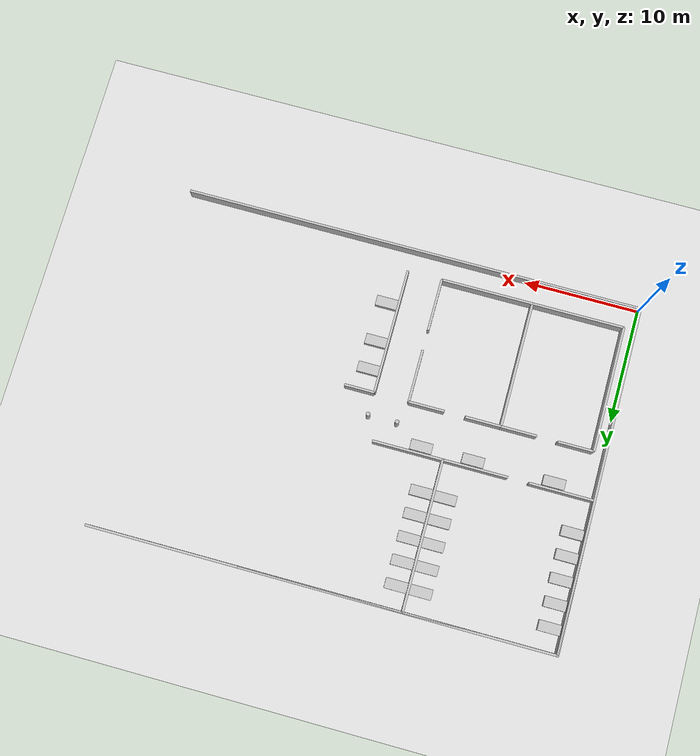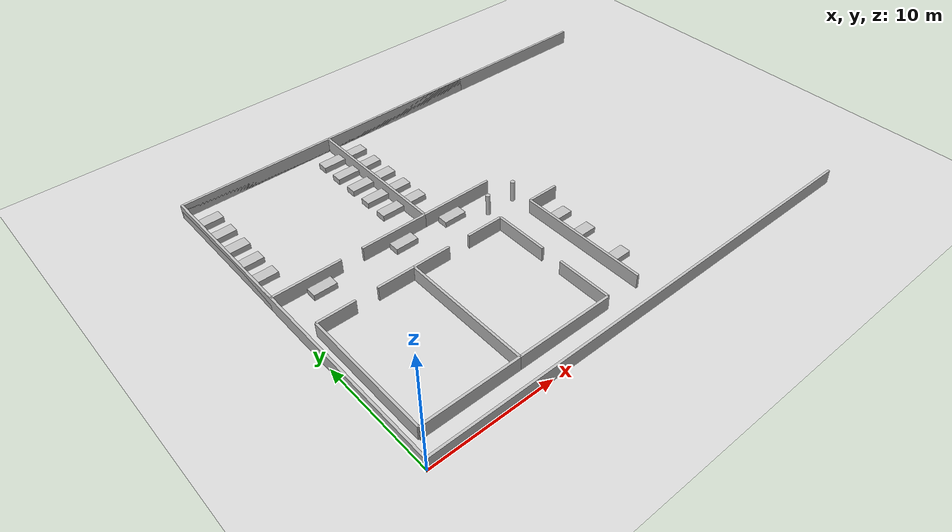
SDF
<sdf version="1.9">
 <world name="hospital">
  <model name="ground_plane">
   <static>true</static>
   <link name="link">
    <collision name="collision">
     <geometry><plane><normal>0 0 1</normal><size>200 200</size></plane></geometry>
    </collision>
    <visual name="visual">
     <pose>0 0 -0.03 0 0 0</pose>
     <cast_shadows>false</cast_shadows>
     <geometry><plane><normal>0 0 1</normal><size>200 200</size></plane></geometry>
     <material>
      <ambient>0.425 0.425 0.425 1.0</ambient>
      <diffuse>0.850 0.850 0.850 1.0</diffuse>
      <specular>0.14 0.14 0.14 1</specular>
      <emissive>0.000 0.000 0.000 1</emissive>
     </material>
    </visual>
   </link>
  </model>
  <model name="wall_0">
   <static>true</static>
   <pose>20.0 0.0 0.6 0 0 0</pose>
   <link name="link">
    <collision name="c"><geometry><box><size>40.2 0.2 1.2</size></box></geometry></collision>
    <visual name="v">
     <geometry><box><size>40.2 0.2 1.2</size></box></geometry>
     <material>
      <ambient>0.375 0.375 0.375 1.0</ambient>
      <diffuse>0.750 0.750 0.750 1.0</diffuse>
      <specular>0.14 0.14 0.14 1</specular>
      <emissive>0.000 0.000 0.000 1</emissive>
     </material>
    </visual>
   </link>
  </model>
  <model name="wall_1">
   <static>true</static>
   <pose>20.0 30.0 0.6 0 0 0</pose>
   <link name="link">
    <collision name="c"><geometry><box><size>40.2 0.20000000000000284 1.2</size></box></geometry></collision>
    <visual name="v">
     <geometry><box><size>40.2 0.20000000000000284 1.2</size></box></geometry>
     <material>
      <ambient>0.375 0.375 0.375 1.0</ambient>
      <diffuse>0.750 0.750 0.750 1.0</diffuse>
      <specular>0.14 0.14 0.14 1</specular>
      <emissive>0.000 0.000 0.000 1</emissive>
     </material>
    </visual>
   </link>
  </model>
  <model name="wall_2">
   <static>true</static>
   <pose>0.0 15.0 0.6 0 0 0</pose>
   <link name="link">
    <collision name="c"><geometry><box><size>0.2 30.200000000000003 1.2</size></box></geometry></collision>
    <visual name="v">
     <geometry><box><size>0.2 30.200000000000003 1.2</size></box></geometry>
     <material>
      <ambient>0.375 0.375 0.375 1.0</ambient>
      <diffuse>0.750 0.750 0.750 1.0</diffuse>
      <specular>0.14 0.14 0.14 1</specular>
      <emissive>0.000 0.000 0.000 1</emissive>
     </material>
    </visual>
   </link>
  </model>
  <model name="wall_4">
   <static>true</static>
   <pose>2.8 17.0 0.6 0 0 0</pose>
   <link name="link">
    <collision name="c"><geometry><box><size>5.6 0.20000000000000284 1.2</size></box></geometry></collision>
    <visual name="v">
     <geometry><box><size>5.6 0.20000000000000284 1.2</size></box></geometry>
     <material>
      <ambient>0.375 0.375 0.375 1.0</ambient>
      <diffuse>0.750 0.750 0.750 1.0</diffuse>
      <specular>0.14 0.14 0.14 1</specular>
      <emissive>0.000 0.000 0.000 1</emissive>
     </material>
    </visual>
   </link>
  </model>
  <model name="wall_5">
   <static>true</static>
   <pose>10.2 17.0 0.6 0 0 0</pose>
   <link name="link">
    <collision name="c"><geometry><box><size>5.6 0.20000000000000284 1.2</size></box></geometry></collision>
    <visual name="v">
     <geometry><box><size>5.6 0.20000000000000284 1.2</size></box></geometry>
     <material>
      <ambient>0.375 0.375 0.375 1.0</ambient>
      <diffuse>0.750 0.750 0.750 1.0</diffuse>
      <specular>0.14 0.14 0.14 1</specular>
      <emissive>0.000 0.000 0.000 1</emissive>
     </material>
    </visual>
   </link>
  </model>
  <model name="wall_6">
   <static>true</static>
   <pose>6.5 30.0 0.6 0 0 0</pose>
   <link name="link">
    <collision name="c"><geometry><box><size>13.0 0.20000000000000284 1.2</size></box></geometry></collision>
    <visual name="v">
     <geometry><box><size>13.0 0.20000000000000284 1.2</size></box></geometry>
     <material>
      <ambient>0.375 0.375 0.375 1.0</ambient>
      <diffuse>0.750 0.750 0.750 1.0</diffuse>
      <specular>0.14 0.14 0.14 1</specular>
      <emissive>0.000 0.000 0.000 1</emissive>
     </material>
    </visual>
   </link>
  </model>
  <model name="wall_7">
   <static>true</static>
   <pose>0.0 23.5 0.6 0 0 0</pose>
   <link name="link">
    <collision name="c"><geometry><box><size>0.2 13.0 1.2</size></box></geometry></collision>
    <visual name="v">
     <geometry><box><size>0.2 13.0 1.2</size></box></geometry>
     <material>
      <ambient>0.375 0.375 0.375 1.0</ambient>
      <diffuse>0.750 0.750 0.750 1.0</diffuse>
      <specular>0.14 0.14 0.14 1</specular>
      <emissive>0.000 0.000 0.000 1</emissive>
     </material>
    </visual>
   </link>
  </model>
  <model name="wall_8">
   <static>true</static>
   <pose>13.0 23.5 0.6 0 0 0</pose>
   <link name="link">
    <collision name="c"><geometry><box><size>0.1999999999999993 13.0 1.2</size></box></geometry></collision>
    <visual name="v">
     <geometry><box><size>0.1999999999999993 13.0 1.2</size></box></geometry>
     <material>
      <ambient>0.375 0.375 0.375 1.0</ambient>
      <diffuse>0.750 0.750 0.750 1.0</diffuse>
      <specular>0.14 0.14 0.14 1</specular>
      <emissive>0.000 0.000 0.000 1</emissive>
     </material>
    </visual>
   </link>
  </model>
  <model name="wall_9">
   <static>true</static>
   <pose>16.05 17.0 0.6 0 0 0</pose>
   <link name="link">
    <collision name="c">
     <geometry><box><size>6.100000000000001 0.20000000000000284 1.2</size></box></geometry>
    </collision>
    <visual name="v">
     <geometry><box><size>6.100000000000001 0.20000000000000284 1.2</size></box></geometry>
     <material>
      <ambient>0.375 0.375 0.375 1.0</ambient>
      <diffuse>0.750 0.750 0.750 1.0</diffuse>
      <specular>0.14 0.14 0.14 1</specular>
      <emissive>0.000 0.000 0.000 1</emissive>
     </material>
    </visual>
   </link>
  </model>
  <model name="wall_11">
   <static>true</static>
   <pose>20.0 30.0 0.6 0 0 0</pose>
   <link name="link">
    <collision name="c"><geometry><box><size>14.0 0.20000000000000284 1.2</size></box></geometry></collision>
    <visual name="v">
     <geometry><box><size>14.0 0.20000000000000284 1.2</size></box></geometry>
     <material>
      <ambient>0.375 0.375 0.375 1.0</ambient>
      <diffuse>0.750 0.750 0.750 1.0</diffuse>
      <specular>0.14 0.14 0.14 1</specular>
      <emissive>0.000 0.000 0.000 1</emissive>
     </material>
    </visual>
   </link>
  </model>
  <model name="wall_12">
   <static>true</static>
   <pose>13.0 23.5 0.6 0 0 0</pose>
   <link name="link">
    <collision name="c"><geometry><box><size>0.1999999999999993 13.0 1.2</size></box></geometry></collision>
    <visual name="v">
     <geometry><box><size>0.1999999999999993 13.0 1.2</size></box></geometry>
     <material>
      <ambient>0.375 0.375 0.375 1.0</ambient>
      <diffuse>0.750 0.750 0.750 1.0</diffuse>
      <specular>0.14 0.14 0.14 1</specular>
      <emissive>0.000 0.000 0.000 1</emissive>
     </material>
    </visual>
   </link>
  </model>
  <model name="wall_19">
   <static>true</static>
   <pose>5.0 2.0 0.6 0 0 0</pose>
   <link name="link">
    <collision name="c"><geometry><box><size>8.0 0.20000000000000018 1.2</size></box></geometry></collision>
    <visual name="v">
     <geometry><box><size>8.0 0.20000000000000018 1.2</size></box></geometry>
     <material>
      <ambient>0.375 0.375 0.375 1.0</ambient>
      <diffuse>0.750 0.750 0.750 1.0</diffuse>
      <specular>0.14 0.14 0.14 1</specular>
      <emissive>0.000 0.000 0.000 1</emissive>
     </material>
    </visual>
   </link>
  </model>
  <model name="wall_20">
   <static>true</static>
   <pose>2.55 13.0 0.6 0 0 0</pose>
   <link name="link">
    <collision name="c">
     <geometry><box><size>3.0999999999999996 0.1999999999999993 1.2</size></box></geometry>
    </collision>
    <visual name="v">
     <geometry><box><size>3.0999999999999996 0.1999999999999993 1.2</size></box></geometry>
     <material>
      <ambient>0.375 0.375 0.375 1.0</ambient>
      <diffuse>0.750 0.750 0.750 1.0</diffuse>
      <specular>0.14 0.14 0.14 1</specular>
      <emissive>0.000 0.000 0.000 1</emissive>
     </material>
    </visual>
   </link>
  </model>
  <model name="wall_21">
   <static>true</static>
   <pose>7.45 13.0 0.6 0 0 0</pose>
   <link name="link">
    <collision name="c">
     <geometry><box><size>3.0999999999999996 0.1999999999999993 1.2</size></box></geometry>
    </collision>
    <visual name="v">
     <geometry><box><size>3.0999999999999996 0.1999999999999993 1.2</size></box></geometry>
     <material>
      <ambient>0.375 0.375 0.375 1.0</ambient>
      <diffuse>0.750 0.750 0.750 1.0</diffuse>
      <specular>0.14 0.14 0.14 1</specular>
      <emissive>0.000 0.000 0.000 1</emissive>
     </material>
    </visual>
   </link>
  </model>
  <model name="wall_22">
   <static>true</static>
   <pose>1.0 7.5 0.6 0 0 0</pose>
   <link name="link">
    <collision name="c"><geometry><box><size>0.20000000000000007 11.0 1.2</size></box></geometry></collision>
    <visual name="v">
     <geometry><box><size>0.20000000000000007 11.0 1.2</size></box></geometry>
     <material>
      <ambient>0.375 0.375 0.375 1.0</ambient>
      <diffuse>0.750 0.750 0.750 1.0</diffuse>
      <specular>0.14 0.14 0.14 1</specular>
      <emissive>0.000 0.000 0.000 1</emissive>
     </material>
    </visual>
   </link>
  </model>
  <model name="wall_23">
   <static>true</static>
   <pose>9.0 7.5 0.6 0 0 0</pose>
   <link name="link">
    <collision name="c"><geometry><box><size>0.1999999999999993 11.0 1.2</size></box></geometry></collision>
    <visual name="v">
     <geometry><box><size>0.1999999999999993 11.0 1.2</size></box></geometry>
     <material>
      <ambient>0.375 0.375 0.375 1.0</ambient>
      <diffuse>0.750 0.750 0.750 1.0</diffuse>
      <specular>0.14 0.14 0.14 1</specular>
      <emissive>0.000 0.000 0.000 1</emissive>
     </material>
    </visual>
   </link>
  </model>
  <model name="wall_24">
   <static>true</static>
   <pose>13.0 2.0 0.6 0 0 0</pose>
   <link name="link">
    <collision name="c"><geometry><box><size>8.0 0.20000000000000018 1.2</size></box></geometry></collision>
    <visual name="v">
     <geometry><box><size>8.0 0.20000000000000018 1.2</size></box></geometry>
     <material>
      <ambient>0.375 0.375 0.375 1.0</ambient>
      <diffuse>0.750 0.750 0.750 1.0</diffuse>
      <specular>0.14 0.14 0.14 1</specular>
      <emissive>0.000 0.000 0.000 1</emissive>
     </material>
    </visual>
   </link>
  </model>
  <model name="wall_25">
   <static>true</static>
   <pose>10.55 13.0 0.6 0 0 0</pose>
   <link name="link">
    <collision name="c">
     <geometry><box><size>3.0999999999999996 0.1999999999999993 1.2</size></box></geometry>
    </collision>
    <visual name="v">
     <geometry><box><size>3.0999999999999996 0.1999999999999993 1.2</size></box></geometry>
     <material>
      <ambient>0.375 0.375 0.375 1.0</ambient>
      <diffuse>0.750 0.750 0.750 1.0</diffuse>
      <specular>0.14 0.14 0.14 1</specular>
      <emissive>0.000 0.000 0.000 1</emissive>
     </material>
    </visual>
   </link>
  </model>
  <model name="wall_26">
   <static>true</static>
   <pose>15.45 13.0 0.6 0 0 0</pose>
   <link name="link">
    <collision name="c">
     <geometry><box><size>3.0999999999999996 0.1999999999999993 1.2</size></box></geometry>
    </collision>
    <visual name="v">
     <geometry><box><size>3.0999999999999996 0.1999999999999993 1.2</size></box></geometry>
     <material>
      <ambient>0.375 0.375 0.375 1.0</ambient>
      <diffuse>0.750 0.750 0.750 1.0</diffuse>
      <specular>0.14 0.14 0.14 1</specular>
      <emissive>0.000 0.000 0.000 1</emissive>
     </material>
    </visual>
   </link>
  </model>
  <model name="wall_27">
   <static>true</static>
   <pose>9.0 7.5 0.6 0 0 0</pose>
   <link name="link">
    <collision name="c"><geometry><box><size>0.1999999999999993 11.0 1.2</size></box></geometry></collision>
    <visual name="v">
     <geometry><box><size>0.1999999999999993 11.0 1.2</size></box></geometry>
     <material>
      <ambient>0.375 0.375 0.375 1.0</ambient>
      <diffuse>0.750 0.750 0.750 1.0</diffuse>
      <specular>0.14 0.14 0.14 1</specular>
      <emissive>0.000 0.000 0.000 1</emissive>
     </material>
    </visual>
   </link>
  </model>
  <model name="wall_28">
   <static>true</static>
   <pose>17.0 4.3 0.6 0 0 0</pose>
   <link name="link">
    <collision name="c"><geometry><box><size>0.20000000000000284 4.6 1.2</size></box></geometry></collision>
    <visual name="v">
     <geometry><box><size>0.20000000000000284 4.6 1.2</size></box></geometry>
     <material>
      <ambient>0.375 0.375 0.375 1.0</ambient>
      <diffuse>0.750 0.750 0.750 1.0</diffuse>
      <specular>0.14 0.14 0.14 1</specular>
      <emissive>0.000 0.000 0.000 1</emissive>
     </material>
    </visual>
   </link>
  </model>
  <model name="wall_29">
   <static>true</static>
   <pose>17.0 10.7 0.6 0 0 0</pose>
   <link name="link">
    <collision name="c"><geometry><box><size>0.20000000000000284 4.6 1.2</size></box></geometry></collision>
    <visual name="v">
     <geometry><box><size>0.20000000000000284 4.6 1.2</size></box></geometry>
     <material>
      <ambient>0.375 0.375 0.375 1.0</ambient>
      <diffuse>0.750 0.750 0.750 1.0</diffuse>
      <specular>0.14 0.14 0.14 1</specular>
      <emissive>0.000 0.000 0.000 1</emissive>
     </material>
    </visual>
   </link>
  </model>
  <model name="wall_31">
   <static>true</static>
   <pose>21.3 13.0 0.6 0 0 0</pose>
   <link name="link">
    <collision name="c">
     <geometry><box><size>2.6000000000000014 0.1999999999999993 1.2</size></box></geometry>
    </collision>
    <visual name="v">
     <geometry><box><size>2.6000000000000014 0.1999999999999993 1.2</size></box></geometry>
     <material>
      <ambient>0.375 0.375 0.375 1.0</ambient>
      <diffuse>0.750 0.750 0.750 1.0</diffuse>
      <specular>0.14 0.14 0.14 1</specular>
      <emissive>0.000 0.000 0.000 1</emissive>
     </material>
    </visual>
   </link>
  </model>
  <model name="wall_33">
   <static>true</static>
   <pose>20.0 7.5 0.6 0 0 0</pose>
   <link name="link">
    <collision name="c"><geometry><box><size>0.20000000000000284 11.0 1.2</size></box></geometry></collision>
    <visual name="v">
     <geometry><box><size>0.20000000000000284 11.0 1.2</size></box></geometry>
     <material>
      <ambient>0.375 0.375 0.375 1.0</ambient>
      <diffuse>0.750 0.750 0.750 1.0</diffuse>
      <specular>0.14 0.14 0.14 1</specular>
      <emissive>0.000 0.000 0.000 1</emissive>
     </material>
    </visual>
   </link>
  </model>
  <model name="bed_0">
   <static>true</static>
   <pose>1.05 20.0 0.25 0 0 0</pose>
   <link name="link">
    <collision name="c"><geometry><box><size>1.9 0.8999999999999986 0.5</size></box></geometry></collision>
    <visual name="v">
     <geometry><box><size>1.9 0.8999999999999986 0.5</size></box></geometry>
     <material>
      <ambient>0.375 0.375 0.375 1.0</ambient>
      <diffuse>0.750 0.750 0.750 1.0</diffuse>
      <specular>0.14 0.14 0.14 1</specular>
      <emissive>0.000 0.000 0.000 1</emissive>
     </material>
    </visual>
   </link>
  </model>
  <model name="bed_1">
   <static>true</static>
   <pose>11.95 20.0 0.25 0 0 0</pose>
   <link name="link">
    <collision name="c">
     <geometry><box><size>1.9000000000000004 0.8999999999999986 0.5</size></box></geometry>
    </collision>
    <visual name="v">
     <geometry><box><size>1.9000000000000004 0.8999999999999986 0.5</size></box></geometry>
     <material>
      <ambient>0.375 0.375 0.375 1.0</ambient>
      <diffuse>0.750 0.750 0.750 1.0</diffuse>
      <specular>0.14 0.14 0.14 1</specular>
      <emissive>0.000 0.000 0.000 1</emissive>
     </material>
    </visual>
   </link>
  </model>
  <model name="bed_2">
   <static>true</static>
   <pose>1.05 24.0 0.25 0 0 0</pose>
   <link name="link">
    <collision name="c"><geometry><box><size>1.9 0.8999999999999986 0.5</size></box></geometry></collision>
    <visual name="v">
     <geometry><box><size>1.9 0.8999999999999986 0.5</size></box></geometry>
     <material>
      <ambient>0.375 0.375 0.375 1.0</ambient>
      <diffuse>0.750 0.750 0.750 1.0</diffuse>
      <specular>0.14 0.14 0.14 1</specular>
      <emissive>0.000 0.000 0.000 1</emissive>
     </material>
    </visual>
   </link>
  </model>
  <model name="bed_3">
   <static>true</static>
   <pose>11.95 24.0 0.25 0 0 0</pose>
   <link name="link">
    <collision name="c">
     <geometry><box><size>1.9000000000000004 0.8999999999999986 0.5</size></box></geometry>
    </collision>
    <visual name="v">
     <geometry><box><size>1.9000000000000004 0.8999999999999986 0.5</size></box></geometry>
     <material>
      <ambient>0.375 0.375 0.375 1.0</ambient>
      <diffuse>0.750 0.750 0.750 1.0</diffuse>
      <specular>0.14 0.14 0.14 1</specular>
      <emissive>0.000 0.000 0.000 1</emissive>
     </material>
    </visual>
   </link>
  </model>
  <model name="bed_4">
   <static>true</static>
   <pose>1.05 28.0 0.25 0 0 0</pose>
   <link name="link">
    <collision name="c"><geometry><box><size>1.9 0.8999999999999986 0.5</size></box></geometry></collision>
    <visual name="v">
     <geometry><box><size>1.9 0.8999999999999986 0.5</size></box></geometry>
     <material>
      <ambient>0.375 0.375 0.375 1.0</ambient>
      <diffuse>0.750 0.750 0.750 1.0</diffuse>
      <specular>0.14 0.14 0.14 1</specular>
      <emissive>0.000 0.000 0.000 1</emissive>
     </material>
    </visual>
   </link>
  </model>
  <model name="bed_5">
   <static>true</static>
   <pose>11.95 28.0 0.25 0 0 0</pose>
   <link name="link">
    <collision name="c">
     <geometry><box><size>1.9000000000000004 0.8999999999999986 0.5</size></box></geometry>
    </collision>
    <visual name="v">
     <geometry><box><size>1.9000000000000004 0.8999999999999986 0.5</size></box></geometry>
     <material>
      <ambient>0.375 0.375 0.375 1.0</ambient>
      <diffuse>0.750 0.750 0.750 1.0</diffuse>
      <specular>0.14 0.14 0.14 1</specular>
      <emissive>0.000 0.000 0.000 1</emissive>
     </material>
    </visual>
   </link>
  </model>
  <model name="bed_6">
   <static>true</static>
   <pose>14.05 20.0 0.25 0 0 0</pose>
   <link name="link">
    <collision name="c">
     <geometry><box><size>1.9000000000000004 0.8999999999999986 0.5</size></box></geometry>
    </collision>
    <visual name="v">
     <geometry><box><size>1.9000000000000004 0.8999999999999986 0.5</size></box></geometry>
     <material>
      <ambient>0.375 0.375 0.375 1.0</ambient>
      <diffuse>0.750 0.750 0.750 1.0</diffuse>
      <specular>0.14 0.14 0.14 1</specular>
      <emissive>0.000 0.000 0.000 1</emissive>
     </material>
    </visual>
   </link>
  </model>
  <model name="bed_8">
   <static>true</static>
   <pose>14.05 24.0 0.25 0 0 0</pose>
   <link name="link">
    <collision name="c">
     <geometry><box><size>1.9000000000000004 0.8999999999999986 0.5</size></box></geometry>
    </collision>
    <visual name="v">
     <geometry><box><size>1.9000000000000004 0.8999999999999986 0.5</size></box></geometry>
     <material>
      <ambient>0.375 0.375 0.375 1.0</ambient>
      <diffuse>0.750 0.750 0.750 1.0</diffuse>
      <specular>0.14 0.14 0.14 1</specular>
      <emissive>0.000 0.000 0.000 1</emissive>
     </material>
    </visual>
   </link>
  </model>
  <model name="bed_10">
   <static>true</static>
   <pose>14.05 28.0 0.25 0 0 0</pose>
   <link name="link">
    <collision name="c">
     <geometry><box><size>1.9000000000000004 0.8999999999999986 0.5</size></box></geometry>
    </collision>
    <visual name="v">
     <geometry><box><size>1.9000000000000004 0.8999999999999986 0.5</size></box></geometry>
     <material>
      <ambient>0.375 0.375 0.375 1.0</ambient>
      <diffuse>0.750 0.750 0.750 1.0</diffuse>
      <specular>0.14 0.14 0.14 1</specular>
      <emissive>0.000 0.000 0.000 1</emissive>
     </material>
    </visual>
   </link>
  </model>
  <model name="bed_18">
   <static>true</static>
   <pose>21.05 5.0 0.25 0 0 0</pose>
   <link name="link">
    <collision name="c">
     <geometry><box><size>1.8999999999999986 0.9000000000000004 0.5</size></box></geometry>
    </collision>
    <visual name="v">
     <geometry><box><size>1.8999999999999986 0.9000000000000004 0.5</size></box></geometry>
     <material>
      <ambient>0.375 0.375 0.375 1.0</ambient>
      <diffuse>0.750 0.750 0.750 1.0</diffuse>
      <specular>0.14 0.14 0.14 1</specular>
      <emissive>0.000 0.000 0.000 1</emissive>
     </material>
    </visual>
   </link>
  </model>
  <model name="bed_20">
   <static>true</static>
   <pose>21.05 8.5 0.25 0 0 0</pose>
   <link name="link">
    <collision name="c">
     <geometry><box><size>1.8999999999999986 0.8999999999999986 0.5</size></box></geometry>
    </collision>
    <visual name="v">
     <geometry><box><size>1.8999999999999986 0.8999999999999986 0.5</size></box></geometry>
     <material>
      <ambient>0.375 0.375 0.375 1.0</ambient>
      <diffuse>0.750 0.750 0.750 1.0</diffuse>
      <specular>0.14 0.14 0.14 1</specular>
      <emissive>0.000 0.000 0.000 1</emissive>
     </material>
    </visual>
   </link>
  </model>
  <model name="bed_26">
   <static>true</static>
   <pose>15.0 16.3 0.25 0 0 0</pose>
   <link name="link">
    <collision name="c">
     <geometry><box><size>1.8999999999999986 0.9000000000000004 0.5</size></box></geometry>
    </collision>
    <visual name="v">
     <geometry><box><size>1.8999999999999986 0.9000000000000004 0.5</size></box></geometry>
     <material>
      <ambient>0.375 0.375 0.375 1.0</ambient>
      <diffuse>0.750 0.750 0.750 1.0</diffuse>
      <specular>0.14 0.14 0.14 1</specular>
      <emissive>0.000 0.000 0.000 1</emissive>
     </material>
    </visual>
   </link>
  </model>
  <model name="bed_28">
   <static>true</static>
   <pose>3.5 16.3 0.25 0 0 0</pose>
   <link name="link">
    <collision name="c">
     <geometry><box><size>1.9000000000000004 0.9000000000000004 0.5</size></box></geometry>
    </collision>
    <visual name="v">
     <geometry><box><size>1.9000000000000004 0.9000000000000004 0.5</size></box></geometry>
     <material>
      <ambient>0.375 0.375 0.375 1.0</ambient>
      <diffuse>0.750 0.750 0.750 1.0</diffuse>
      <specular>0.14 0.14 0.14 1</specular>
      <emissive>0.000 0.000 0.000 1</emissive>
     </material>
    </visual>
   </link>
  </model>
  <model name="bed_29">
   <static>true</static>
   <pose>10.5 16.3 0.25 0 0 0</pose>
   <link name="link">
    <collision name="c">
     <geometry><box><size>1.8999999999999986 0.9000000000000004 0.5</size></box></geometry>
    </collision>
    <visual name="v">
     <geometry><box><size>1.8999999999999986 0.9000000000000004 0.5</size></box></geometry>
     <material>
      <ambient>0.375 0.375 0.375 1.0</ambient>
      <diffuse>0.750 0.750 0.750 1.0</diffuse>
      <specular>0.14 0.14 0.14 1</specular>
      <emissive>0.000 0.000 0.000 1</emissive>
     </material>
    </visual>
   </link>
  </model>
  <model name="bed_32">
   <static>true</static>
   <pose>1.05 22.0 0.25 0 0 0</pose>
   <link name="link">
    <collision name="c"><geometry><box><size>1.9 0.8999999999999986 0.5</size></box></geometry></collision>
    <visual name="v">
     <geometry><box><size>1.9 0.8999999999999986 0.5</size></box></geometry>
     <material>
      <ambient>0.375 0.375 0.375 1.0</ambient>
      <diffuse>0.750 0.750 0.750 1.0</diffuse>
      <specular>0.14 0.14 0.14 1</specular>
      <emissive>0.000 0.000 0.000 1</emissive>
     </material>
    </visual>
   </link>
  </model>
  <model name="bed_33">
   <static>true</static>
   <pose>11.95 22.0 0.25 0 0 0</pose>
   <link name="link">
    <collision name="c">
     <geometry><box><size>1.9000000000000004 0.8999999999999986 0.5</size></box></geometry>
    </collision>
    <visual name="v">
     <geometry><box><size>1.9000000000000004 0.8999999999999986 0.5</size></box></geometry>
     <material>
      <ambient>0.375 0.375 0.375 1.0</ambient>
      <diffuse>0.750 0.750 0.750 1.0</diffuse>
      <specular>0.14 0.14 0.14 1</specular>
      <emissive>0.000 0.000 0.000 1</emissive>
     </material>
    </visual>
   </link>
  </model>
  <model name="bed_34">
   <static>true</static>
   <pose>1.05 26.0 0.25 0 0 0</pose>
   <link name="link">
    <collision name="c"><geometry><box><size>1.9 0.8999999999999986 0.5</size></box></geometry></collision>
    <visual name="v">
     <geometry><box><size>1.9 0.8999999999999986 0.5</size></box></geometry>
     <material>
      <ambient>0.375 0.375 0.375 1.0</ambient>
      <diffuse>0.750 0.750 0.750 1.0</diffuse>
      <specular>0.14 0.14 0.14 1</specular>
      <emissive>0.000 0.000 0.000 1</emissive>
     </material>
    </visual>
   </link>
  </model>
  <model name="bed_35">
   <static>true</static>
   <pose>11.95 26.0 0.25 0 0 0</pose>
   <link name="link">
    <collision name="c">
     <geometry><box><size>1.9000000000000004 0.8999999999999986 0.5</size></box></geometry>
    </collision>
    <visual name="v">
     <geometry><box><size>1.9000000000000004 0.8999999999999986 0.5</size></box></geometry>
     <material>
      <ambient>0.375 0.375 0.375 1.0</ambient>
      <diffuse>0.750 0.750 0.750 1.0</diffuse>
      <specular>0.14 0.14 0.14 1</specular>
      <emissive>0.000 0.000 0.000 1</emissive>
     </material>
    </visual>
   </link>
  </model>
  <model name="bed_36">
   <static>true</static>
   <pose>14.05 22.0 0.25 0 0 0</pose>
   <link name="link">
    <collision name="c">
     <geometry><box><size>1.9000000000000004 0.8999999999999986 0.5</size></box></geometry>
    </collision>
    <visual name="v">
     <geometry><box><size>1.9000000000000004 0.8999999999999986 0.5</size></box></geometry>
     <material>
      <ambient>0.375 0.375 0.375 1.0</ambient>
      <diffuse>0.750 0.750 0.750 1.0</diffuse>
      <specular>0.14 0.14 0.14 1</specular>
      <emissive>0.000 0.000 0.000 1</emissive>
     </material>
    </visual>
   </link>
  </model>
  <model name="bed_38">
   <static>true</static>
   <pose>14.05 26.0 0.25 0 0 0</pose>
   <link name="link">
    <collision name="c">
     <geometry><box><size>1.9000000000000004 0.8999999999999986 0.5</size></box></geometry>
    </collision>
    <visual name="v">
     <geometry><box><size>1.9000000000000004 0.8999999999999986 0.5</size></box></geometry>
     <material>
      <ambient>0.375 0.375 0.375 1.0</ambient>
      <diffuse>0.750 0.750 0.750 1.0</diffuse>
      <specular>0.14 0.14 0.14 1</specular>
      <emissive>0.000 0.000 0.000 1</emissive>
     </material>
    </visual>
   </link>
  </model>
  <model name="bed_44">
   <static>true</static>
   <pose>21.05 11.0 0.25 0 0 0</pose>
   <link name="link">
    <collision name="c">
     <geometry><box><size>1.8999999999999986 0.8999999999999986 0.5</size></box></geometry>
    </collision>
    <visual name="v">
     <geometry><box><size>1.8999999999999986 0.8999999999999986 0.5</size></box></geometry>
     <material>
      <ambient>0.375 0.375 0.375 1.0</ambient>
      <diffuse>0.750 0.750 0.750 1.0</diffuse>
      <specular>0.14 0.14 0.14 1</specular>
      <emissive>0.000 0.000 0.000 1</emissive>
     </material>
    </visual>
   </link>
  </model>
  <model name="person_0">
   <static>true</static>
   <pose>20.0 15.0 0.9 0 0 0</pose>
   <link name="link">
    <collision name="c">
     <geometry><cylinder><radius>0.18</radius><length>1.8</length></cylinder></geometry>
    </collision>
    <visual name="v">
     <geometry><cylinder><radius>0.18</radius><length>1.8</length></cylinder></geometry>
     <material>
      <ambient>0.375 0.375 0.375 1.0</ambient>
      <diffuse>0.750 0.750 0.750 1.0</diffuse>
      <specular>0.14 0.14 0.14 1</specular>
      <emissive>0.000 0.000 0.000 1</emissive>
     </material>
    </visual>
   </link>
  </model>
  <model name="person_2">
   <static>true</static>
   <pose>17.5 15.0 0.9 0 0 0</pose>
   <link name="link">
    <collision name="c">
     <geometry><cylinder><radius>0.18</radius><length>1.8</length></cylinder></geometry>
    </collision>
    <visual name="v">
     <geometry><cylinder><radius>0.18</radius><length>1.8</length></cylinder></geometry>
     <material>
      <ambient>0.375 0.375 0.375 1.0</ambient>
      <diffuse>0.750 0.750 0.750 1.0</diffuse>
      <specular>0.14 0.14 0.14 1</specular>
      <emissive>0.000 0.000 0.000 1</emissive>
     </material>
    </visual>
   </link>
  </model>
 </world>
</sdf>
